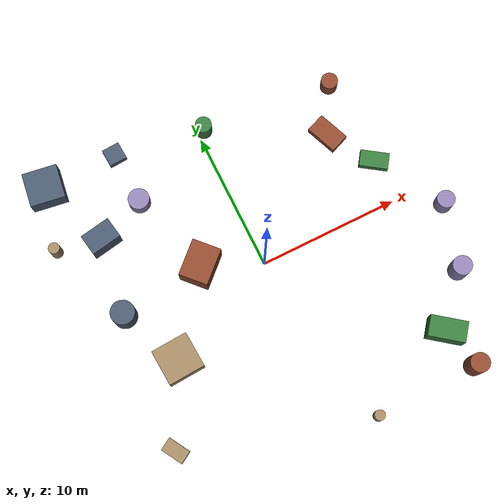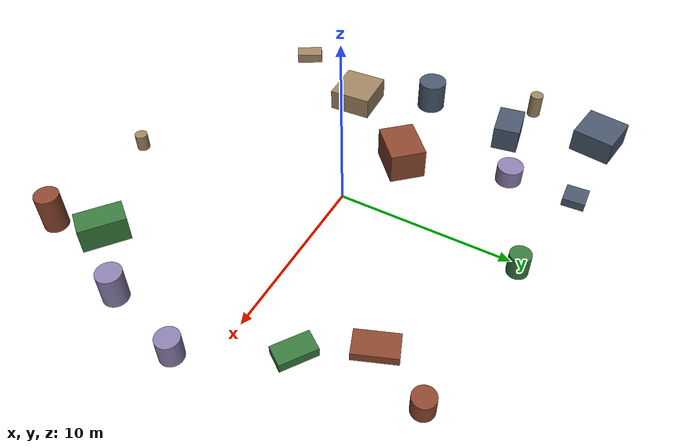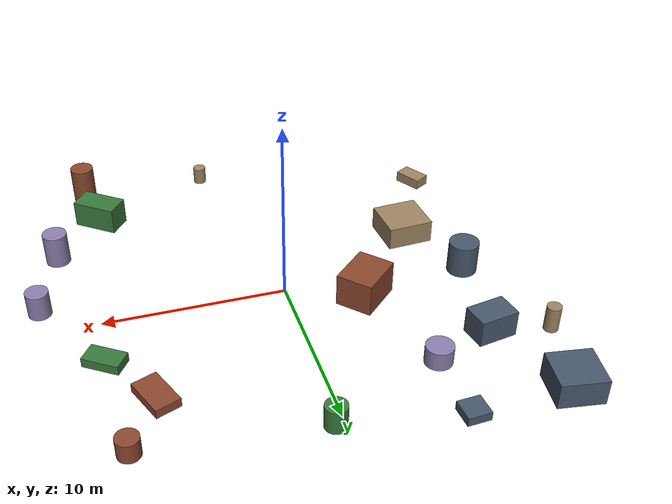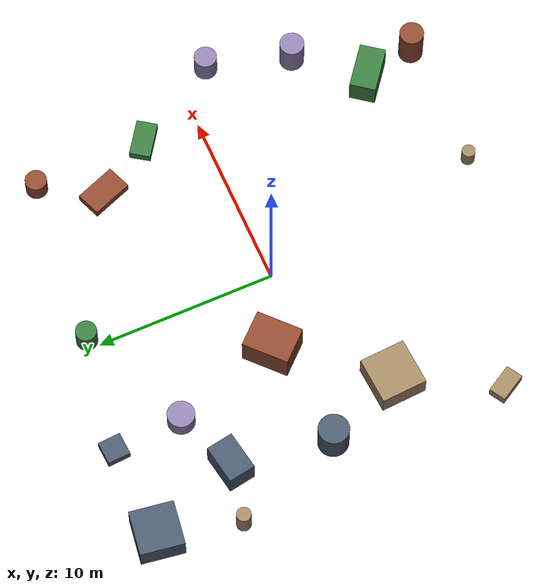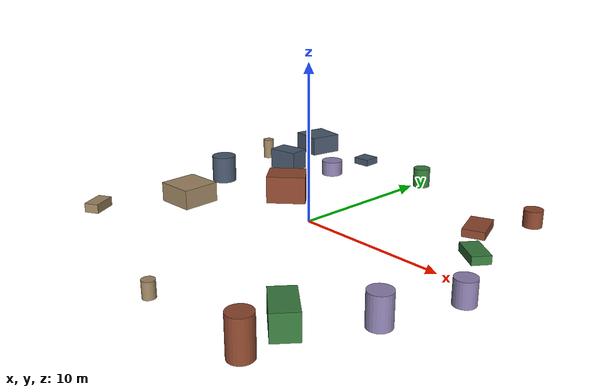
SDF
<sdf version="1.10">
 <world name="robotx_task1_uav_view">
  <gravity>0 0 -9.81</gravity>
  <physics name="physics" type="ode">
   <max_step_size>0.002</max_step_size>
   <real_time_factor>1.0</real_time_factor>
  </physics>
  <scene>
   <ambient>0.20 0.20 0.20 1.0</ambient>
   <background>0.58 0.70 0.88 1.0</background>
   <shadows>true</shadows>
   <grid>false</grid>
  </scene>
  <light name="sun" type="directional">
   <pose>0 0 300 0 0 0</pose>
   <diffuse>0.78 0.78 0.78 1.0</diffuse>
   <specular>0.45 0.45 0.45 1.0</specular>
   <direction>0.20 -0.08 -1.0</direction>
   <attenuation>
    <range>2500</range>
    <constant>0.85</constant>
    <linear>0.001</linear>
    <quadratic>0.00005</quadratic>
   </attenuation>
  </light>
  <plugin filename="gz-sim-physics-system" name="gz::sim::systems::Physics"/>
  <plugin filename="gz-sim-user-commands-system" name="gz::sim::systems::UserCommands"/>
  <plugin filename="gz-sim-scene-broadcaster-system" name="gz::sim::systems::SceneBroadcaster"/>
  <plugin filename="gz-sim-sensors-system" name="gz::sim::systems::Sensors">
   <render_engine>ogre2</render_engine>
  </plugin>
  <model name="scene_clutter_box_000">
   <static>true</static>
   <pose>-8.155 -3.399 0.671 0 0 0.058505</pose>
   <link name="link">
    <visual name="v">
     <geometry><box><size>2.605 2.539 1.301</size></box></geometry>
     <material><ambient>0.45 0.38 0.32 1.0</ambient><diffuse>0.62 0.52 0.38 1.0</diffuse></material>
    </visual>
   </link>
  </model>
  <model name="scene_clutter_box_001">
   <static>true</static>
   <pose>-5.942 11.640 0.265 0 0 0.059265</pose>
   <link name="link">
    <visual name="v">
     <geometry><box><size>1.269 1.259 0.491</size></box></geometry>
     <material><ambient>0.18 0.22 0.28 1.0</ambient><diffuse>0.28 0.34 0.42 1.0</diffuse></material>
    </visual>
   </link>
  </model>
  <model name="scene_clutter_cyl_002">
   <static>true</static>
   <pose>9.930 9.560 0.597 0 0 2.685362</pose>
   <link name="link">
    <visual name="v">
     <geometry><cylinder><radius>0.596</radius><length>1.093</length></cylinder></geometry>
     <material><ambient>0.35 0.16 0.12 1.0</ambient><diffuse>0.55 0.28 0.18 1.0</diffuse></material>
    </visual>
   </link>
  </model>
  <model name="scene_clutter_box_003">
   <static>true</static>
   <pose>10.183 3.153 0.286 0 0 -2.175936</pose>
   <link name="link">
    <visual name="v">
     <geometry><box><size>1.164 2.041 0.532</size></box></geometry>
     <material><ambient>0.12 0.30 0.14 1.0</ambient><diffuse>0.22 0.48 0.24 1.0</diffuse></material>
    </visual>
   </link>
  </model>
  <model name="scene_clutter_cyl_004">
   <static>true</static>
   <pose>-5.806 7.761 0.573 0 0 -2.848847</pose>
   <link name="link">
    <visual name="v">
     <geometry><cylinder><radius>0.747</radius><length>1.045</length></cylinder></geometry>
     <material><ambient>0.40 0.35 0.50 1.0</ambient><diffuse>0.55 0.50 0.68 1.0</diffuse></material>
    </visual>
   </link>
  </model>
  <model name="scene_clutter_cyl_005">
   <static>true</static>
   <pose>2.110 -12.646 0.546 0 0 -2.799058</pose>
   <link name="link">
    <visual name="v">
     <geometry><cylinder><radius>0.369</radius><length>0.993</length></cylinder></geometry>
     <material><ambient>0.45 0.38 0.32 1.0</ambient><diffuse>0.62 0.52 0.38 1.0</diffuse></material>
    </visual>
   </link>
  </model>
  <model name="scene_clutter_box_006">
   <static>true</static>
   <pose>-9.245 6.411 0.759 0 0 1.741069</pose>
   <link name="link">
    <visual name="v">
     <geometry><box><size>1.511 2.186 1.479</size></box></geometry>
     <material><ambient>0.18 0.22 0.28 1.0</ambient><diffuse>0.28 0.34 0.42 1.0</diffuse></material>
    </visual>
   </link>
  </model>
  <model name="scene_clutter_box_007">
   <static>true</static>
   <pose>-4.012 1.729 0.942 0 0 -2.395255</pose>
   <link name="link">
    <visual name="v">
     <geometry><box><size>2.611 2.056 1.843</size></box></geometry>
     <material><ambient>0.35 0.16 0.12 1.0</ambient><diffuse>0.55 0.28 0.18 1.0</diffuse></material>
    </visual>
   </link>
  </model>
  <model name="scene_clutter_box_008">
   <static>true</static>
   <pose>8.780 -9.651 0.774 0 0 0.913343</pose>
   <link name="link">
    <visual name="v">
     <geometry><box><size>1.456 2.559 1.508</size></box></geometry>
     <material><ambient>0.12 0.30 0.14 1.0</ambient><diffuse>0.22 0.48 0.24 1.0</diffuse></material>
    </visual>
   </link>
  </model>
  <model name="scene_clutter_cyl_009">
   <static>true</static>
   <pose>11.619 -6.355 0.978 0 0 1.853073</pose>
   <link name="link">
    <visual name="v">
     <geometry><cylinder><radius>0.677</radius><length>1.857</length></cylinder></geometry>
     <material><ambient>0.40 0.35 0.50 1.0</ambient><diffuse>0.55 0.50 0.68 1.0</diffuse></material>
    </visual>
   </link>
  </model>
  <model name="scene_clutter_box_010">
   <static>true</static>
   <pose>-10.921 -8.690 0.322 0 0 2.097528</pose>
   <link name="link">
    <visual name="v">
     <geometry><box><size>1.641 0.962 0.604</size></box></geometry>
     <material><ambient>0.45 0.38 0.32 1.0</ambient><diffuse>0.62 0.52 0.38 1.0</diffuse></material>
    </visual>
   </link>
  </model>
  <model name="scene_clutter_cyl_011">
   <static>true</static>
   <pose>-10.103 0.924 0.976 0 0 -0.554766</pose>
   <link name="link">
    <visual name="v">
     <geometry><cylinder><radius>0.840</radius><length>1.853</length></cylinder></geometry>
     <material><ambient>0.18 0.22 0.28 1.0</ambient><diffuse>0.28 0.34 0.42 1.0</diffuse></material>
    </visual>
   </link>
  </model>
  <model name="scene_clutter_box_012">
   <static>true</static>
   <pose>8.155 6.357 0.271 0 0 -1.199442</pose>
   <link name="link">
    <visual name="v">
     <geometry><box><size>2.331 1.411 0.502</size></box></geometry>
     <material><ambient>0.35 0.16 0.12 1.0</ambient><diffuse>0.55 0.28 0.18 1.0</diffuse></material>
    </visual>
   </link>
  </model>
  <model name="scene_clutter_cyl_013">
   <static>true</static>
   <pose>0.495 10.521 0.711 0 0 2.861352</pose>
   <link name="link">
    <visual name="v">
     <geometry><cylinder><radius>0.581</radius><length>1.322</length></cylinder></geometry>
     <material><ambient>0.12 0.30 0.14 1.0</ambient><diffuse>0.22 0.48 0.24 1.0</diffuse></material>
    </visual>
   </link>
  </model>
  <model name="scene_clutter_cyl_014">
   <static>true</static>
   <pose>12.996 -1.764 0.771 0 0 -0.368657</pose>
   <link name="link">
    <visual name="v">
     <geometry><cylinder><radius>0.628</radius><length>1.442</length></cylinder></geometry>
     <material><ambient>0.40 0.35 0.50 1.0</ambient><diffuse>0.55 0.50 0.68 1.0</diffuse></material>
    </visual>
   </link>
  </model>
  <model name="scene_clutter_cyl_015">
   <static>true</static>
   <pose>-12.416 7.059 0.784 0 0 2.995118</pose>
   <link name="link">
    <visual name="v">
     <geometry><cylinder><radius>0.396</radius><length>1.468</length></cylinder></geometry>
     <material><ambient>0.45 0.38 0.32 1.0</ambient><diffuse>0.62 0.52 0.38 1.0</diffuse></material>
    </visual>
   </link>
  </model>
  <model name="scene_clutter_box_016">
   <static>true</static>
   <pose>-11.257 11.435 0.731 0 0 -1.720116</pose>
   <link name="link">
    <visual name="v">
     <geometry><box><size>2.415 2.454 1.423</size></box></geometry>
     <material><ambient>0.18 0.22 0.28 1.0</ambient><diffuse>0.28 0.34 0.42 1.0</diffuse></material>
    </visual>
   </link>
  </model>
  <model name="scene_clutter_cyl_017">
   <static>true</static>
   <pose>9.386 -12.565 1.152 0 0 -0.597626</pose>
   <link name="link">
    <visual name="v">
     <geometry><cylinder><radius>0.671</radius><length>2.205</length></cylinder></geometry>
     <material><ambient>0.35 0.16 0.12 1.0</ambient><diffuse>0.55 0.28 0.18 1.0</diffuse></material>
    </visual>
   </link>
  </model>
  <model name="uav_dataset_camera">
   <static>false</static>
   <pose>0 0 26 0 0 0</pose>
   <plugin filename="librobotx_overhead_motion_plugin.dylib" name="robotx::OverheadMotionPlugin">
    <radius_x_m>13.34318</radius_x_m>
    <radius_y_m>9.42765</radius_y_m>
    <angular_speed_rad_s>0.083739</angular_speed_rad_s>
    <phase_rad>0.139257</phase_rad>
    <z_wobble_m>0.06584</z_wobble_m>
    <z_wobble_hz>0.05481</z_wobble_hz>
    <z_wobble_phase_rad>3.508901</z_wobble_phase_rad>
   </plugin>
   <link name="camera_link">
    <gravity>false</gravity>
    <sensor name="top_down_rgb" type="camera">
     <always_on>true</always_on>
     <update_rate>20</update_rate>
     <pose>0 0 0 0 1.57079632679 0</pose>
     <camera>
      <horizontal_fov>1.05</horizontal_fov>
      <image><width>1920</width><height>1080</height><format>R8G8B8</format></image>
      <clip><near>0.2</near><far>600</far></clip>
     </camera>
     <topic>/robotx/uav/camera/image_raw</topic>
     <visualize>true</visualize>
    </sensor>
   </link>
  </model>
 </world>
</sdf>
